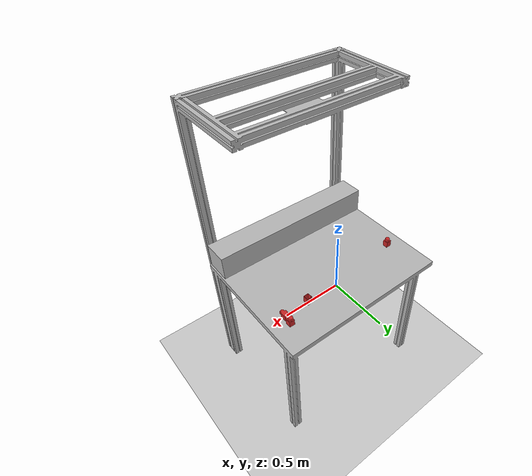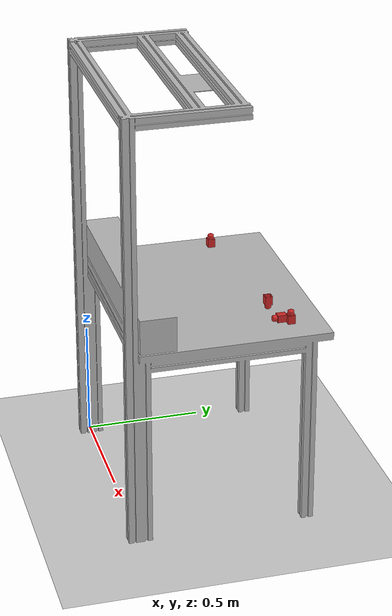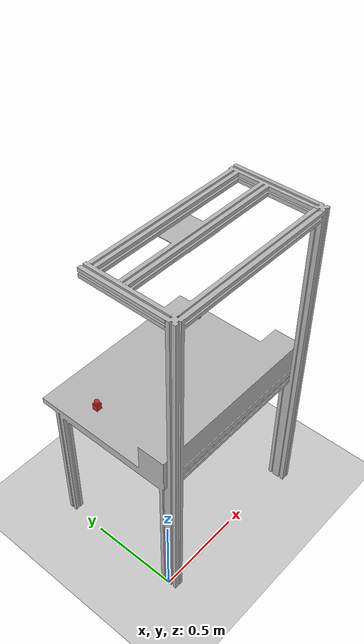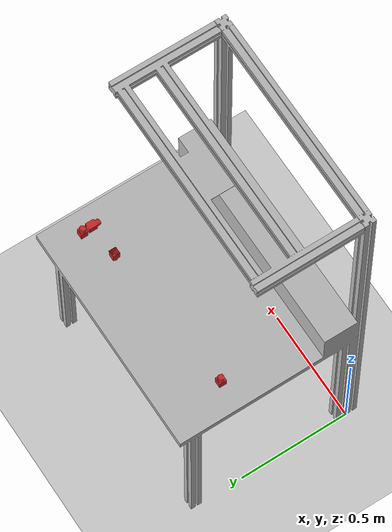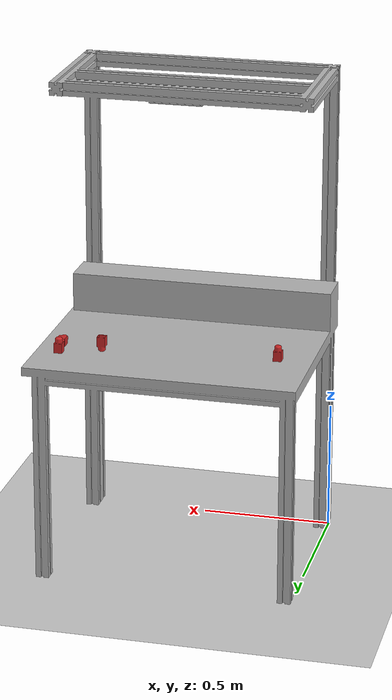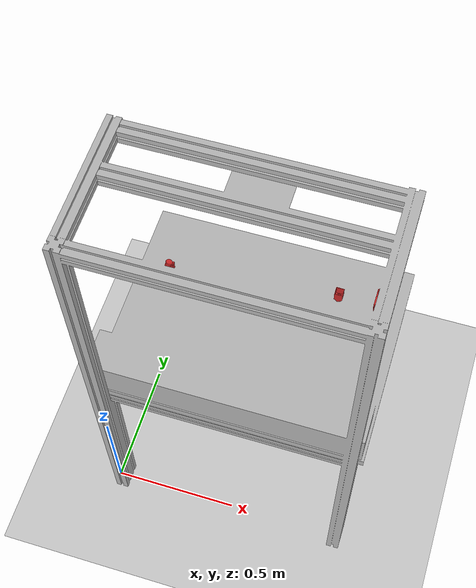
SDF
<?xml version="1.0" ?>
<sdf version="1.4">
  <world name="default">
    <physics type='ode'>
      <gravity>0 0 -9.81</gravity>
      <!-- max step size has to be a multiple of the desired task rate-->
      <max_step_size>0.001</max_step_size>
      <real_time_factor>1</real_time_factor>
    </physics>
    <!-- A global light source -->
    <include>
      <uri>model://sun</uri>
    </include>
    <!-- A ground plane -->
    <include>
      <uri>model://ground_plane</uri>
    </include>
    <include>
      <name>tavolo</name>
      <uri>model://tavolo</uri>
      <pose>0.0 0.0 0.0 0 0 0</pose>
    </include>

    <include>
      <name>X1-Y1-Z2-1</name>
      <uri>model://X1-Y1-Z2</uri>
      <pose>0.9 0.65 0.91 0 0 0</pose>
    </include>
    <include>
      <name>X1-Y1-Z2-2</name>
      <uri>model://X1-Y1-Z2</uri>
      <pose>0.1 0.54 0.91 0 0 0</pose>
    </include>
    <include>
      <name>X1-Y1-Z2-1-upside</name>
      <uri>model://X1-Y1-Z2</uri>
      <pose>0.75 0.6 0.91 0 3.14 0</pose>
    </include>
    <include>
      <name>X1-Y1-Z2-1-side1</name>
      <uri>model://X1-Y1-Z2</uri>
      <pose>0.9 0.6 0.91 1.57 0 0</pose>
    </include>

     <gui>
    <camera name="gzclient_camera">
      <pose>1. 3.2 2.2 0. 0.4 -1.75</pose>
    </camera>
    </gui>

  </world>
</sdf>

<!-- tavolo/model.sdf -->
<sdf version="1.4">

<physics type="ode">

      <ode>

        <constraints>
          <contact_max_correcting_vel>0.1</contact_max_correcting_vel>
          <contact_surface_layer>0.0001</contact_surface_layer>
        </constraints>
      </ode>
	<max_contacts>10</max_contacts>
	</physics>

	<model name="tavolo">
	    <static>true</static>
		<link name="link">

		     <collision name="base">
			<pose>0.5 0.4 0.85 0 0 0</pose>
			<geometry>
			  <box>
			    <size>1 0.8 0.04</size>
			  </box>
			</geometry>

				<!-- see https://gazebosim.org/tutorials?tut=physics_params&cat=physics-->
				 <surface>
				  <bounce>
				    <restitution_coefficient>0.01</restitution_coefficient>
				    <threshold>5.0</threshold>
				  </bounce>
				  <friction>
				    <ode>
				      <mu>10</mu>
				      <mu2>10</mu2>
				    </ode>
				  </friction>
				  <contact>
				     <ode>
					<max_vel>0.1</max_vel>
					<min_depth>0.001</min_depth>
				        <kp>1000000.0</kp>
					<kd>1000.0</kd>
				      </ode>
			            </contact>
				</surface>

		     	</collision>

	     			<collision name="box">
				<pose>0.5 0.08 0.95 0 0 0</pose>
				<geometry>
				  <box>
				    <size>1 0.15 0.15</size>
				  </box>
				</geometry>

				 <surface>
				  <bounce>
				    <restitution_coefficient>0.01</restitution_coefficient>
				    <threshold>5.0</threshold>
				  </bounce>
				  <friction>
				    <ode>
				      <mu>10</mu>
				      <mu2>10</mu2>
				    </ode>
				  </friction>
				  <contact>
				     <ode>
					<max_vel>0.1</max_vel>
					<min_depth>0.001</min_depth>
				        <kp>1000000.0</kp>
					<kd>1000.0</kd>
				      </ode>
			            </contact>
				</surface>

			      </collision>

			   <collision name="back">
				<pose>0.5 -0.02 1.35 1.57 0 0</pose>
				<geometry>
				  <box>
				    <size>1 1.0 0.04</size>
				  </box>
				</geometry>

				 <surface>
				  <bounce>
				    <restitution_coefficient>0.01</restitution_coefficient>
				    <threshold>5.0</threshold>
				  </bounce>
				  <friction>
				    <ode>
				      <mu>10</mu>
				      <mu2>10</mu2>
				    </ode>
				  </friction>
				  <contact>
				     <ode>
					<max_vel>0.1</max_vel>
					<min_depth>0.001</min_depth>
				        <kp>1000000.0</kp>
					<kd>1000.0</kd>
				      </ode>
			            </contact>
				</surface>

			      </collision>

			<visual name="visual">
				<geometry>
					<mesh>
						<uri>model://tavolo/mesh/tavolo.stl</uri>
                                                <scale>0.001 0.001 0.001</scale>
					</mesh>
				</geometry>
			</visual>
		</link>
	</model>
</sdf>

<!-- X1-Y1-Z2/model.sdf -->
<sdf version="1.4">
  <model name="X1-Y1-Z2">
    <static>false</static>
    <link name="link">
      <pose>0 0 0 0 0 0</pose>
      <inertial>
        <pose>0 0 -0.064e-02 0 0 0</pose>
        <mass>0.05</mass>
        <inertia>
          <ixx>0.0000417</ixx>
          <ixy>0</ixy>
          <ixz>0</ixz>
          <iyy>0.0000417</iyy>
          <iyz>0</iyz>
          <izz>0.0000417</izz>
        </inertia>
      </inertial>

      <visual name="visual">
        <geometry>
          <mesh>
            <uri>model://X1-Y1-Z2/meshes/X1-Y1-Z2.stl</uri>
          </mesh>
        </geometry>
        <material>
          <script>
            <uri>file://media/materials/scripts/gazebo.material</uri>
            <name>Gazebo/Red</name>
          </script>
        </material>
      </visual>

      <collision name="collision">
        <geometry>
          <mesh>
            <uri>model://X1-Y1-Z2/meshes/X1-Y1-Z2.stl</uri>
          </mesh>
        </geometry>
        <surface>
          <contact>
            <ode>
              <min_depth>0.008</min_depth>
              <max_vel>0.0</max_vel>
            </ode>
          </contact>
        </surface>
      </collision>
    </link>
  </model>

</sdf>
